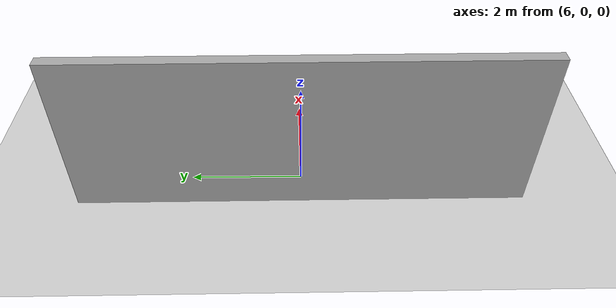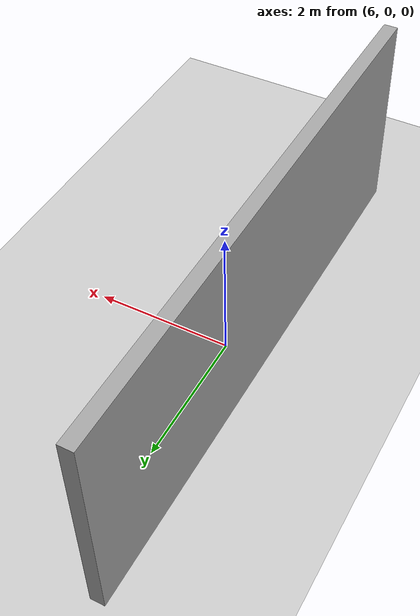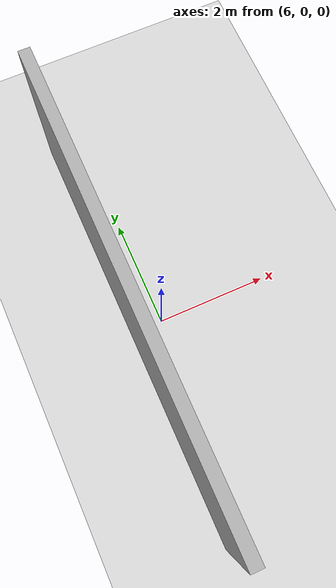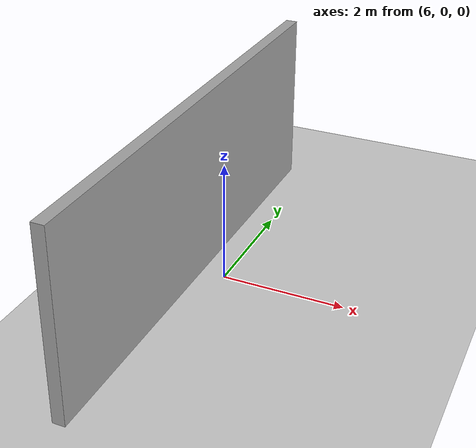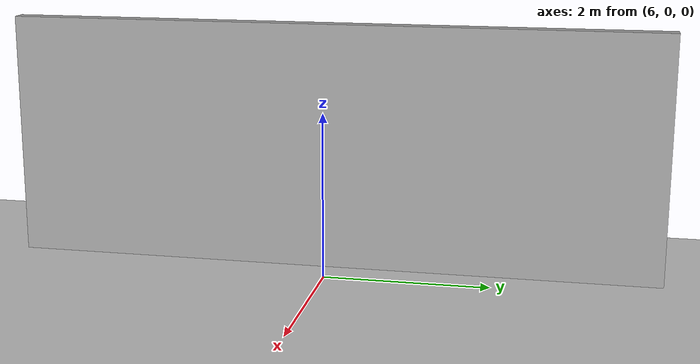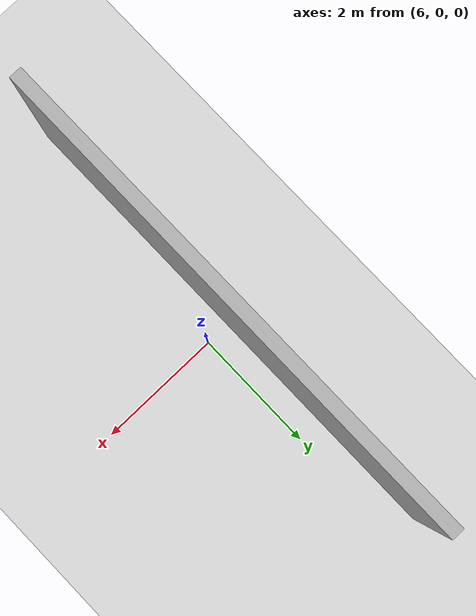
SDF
<?xml version='1.0'?>
<sdf version='1.6'>
  <!-- Negative control: the same camera sees no person target. -->
  <world name='perception_hifi_empty'>
    <physics name='ode' type='ode'>
      <max_step_size>0.001</max_step_size>
      <real_time_update_rate>1000</real_time_update_rate>
    </physics>
    <include><uri>model://ground_plane</uri></include>
    <include><uri>model://sun</uri></include>
    <scene>
      <ambient>0.45 0.45 0.45 1</ambient>
      <background>0.55 0.65 0.75 1</background>
      <shadows>true</shadows>
    </scene>
    <model name='background_wall'>
      <static>true</static>
      <pose>5.5 0 1.5 0 0 0</pose>
      <link name='link'>
        <collision name='collision'><geometry><box><size>0.2 8 3</size></box></geometry></collision>
        <visual name='visual'>
          <geometry><box><size>0.2 8 3</size></box></geometry>
          <material><ambient>0.65 0.65 0.65 1</ambient><diffuse>0.65 0.65 0.65 1</diffuse></material>
        </visual>
      </link>
    </model>
  </world>
</sdf>
